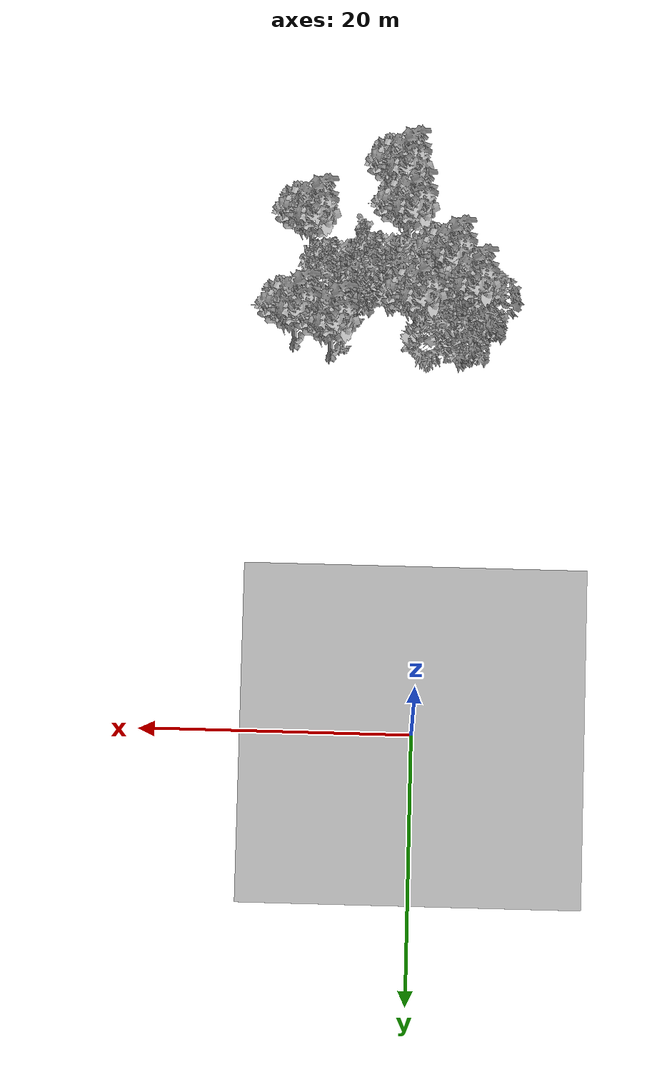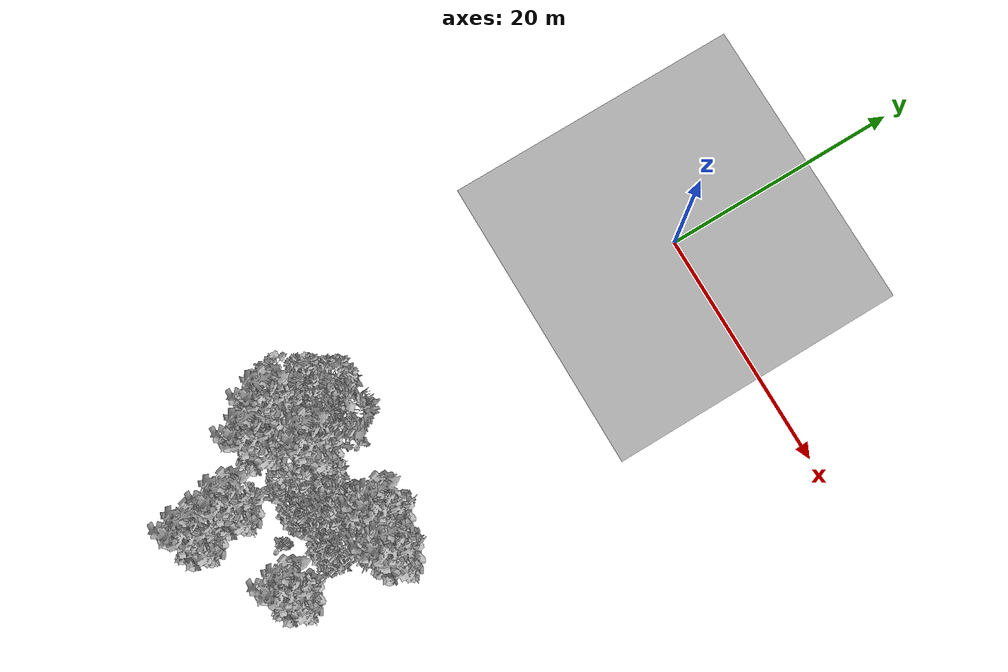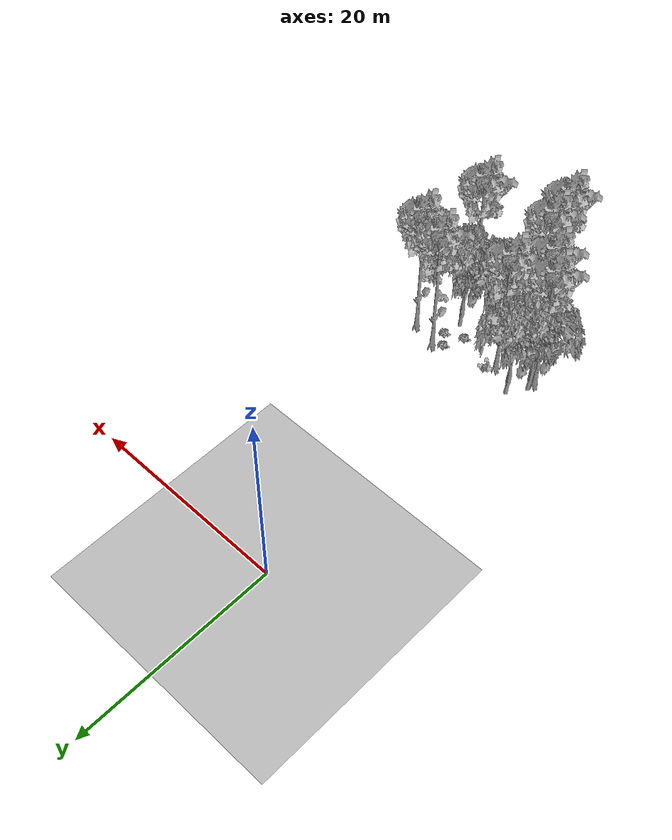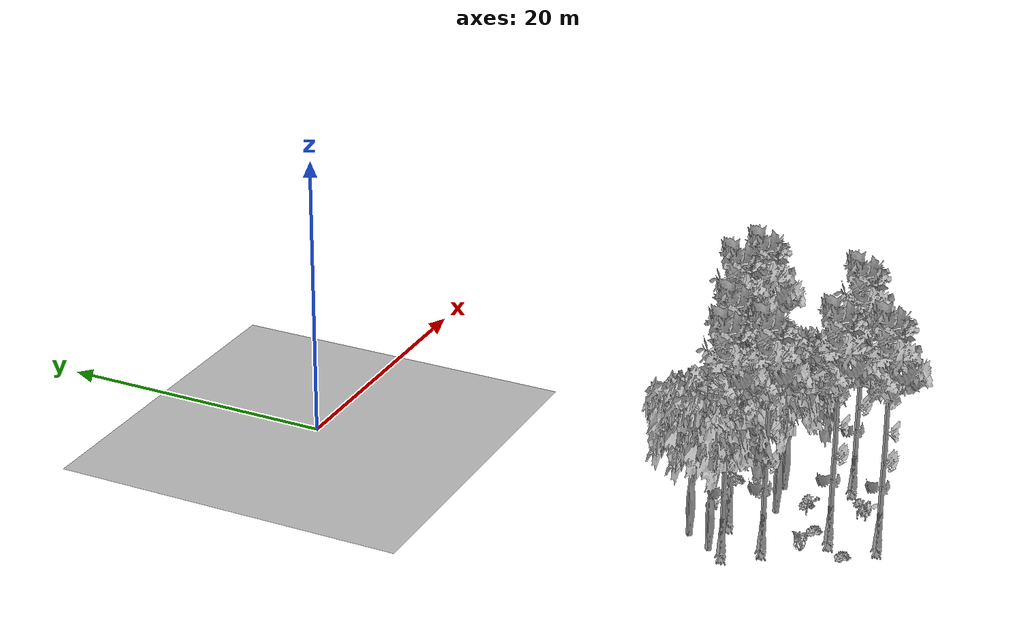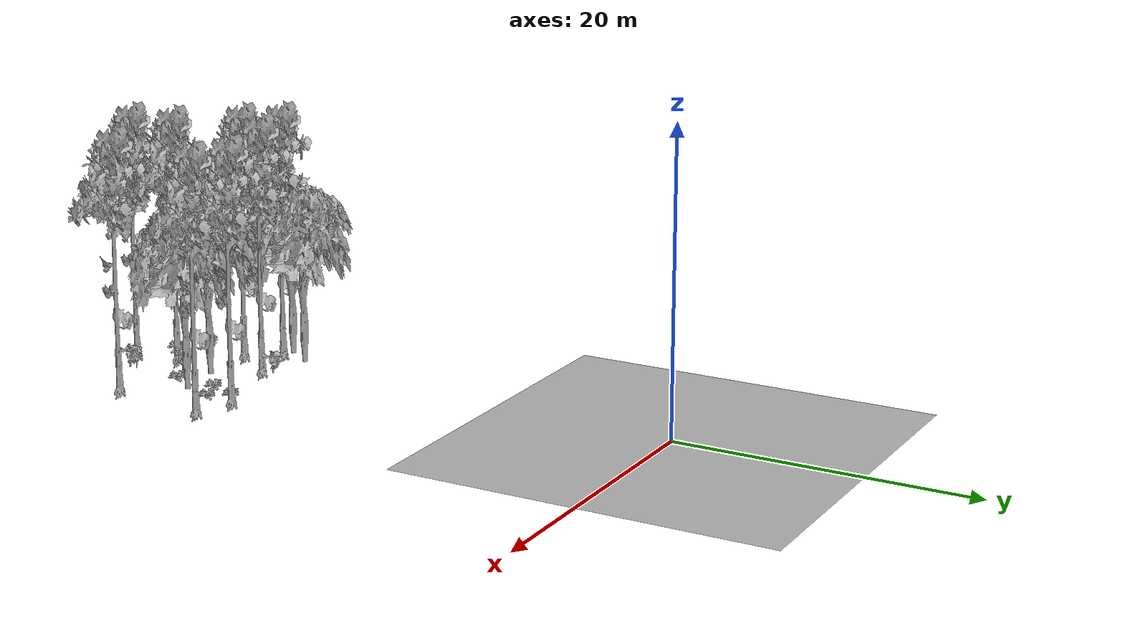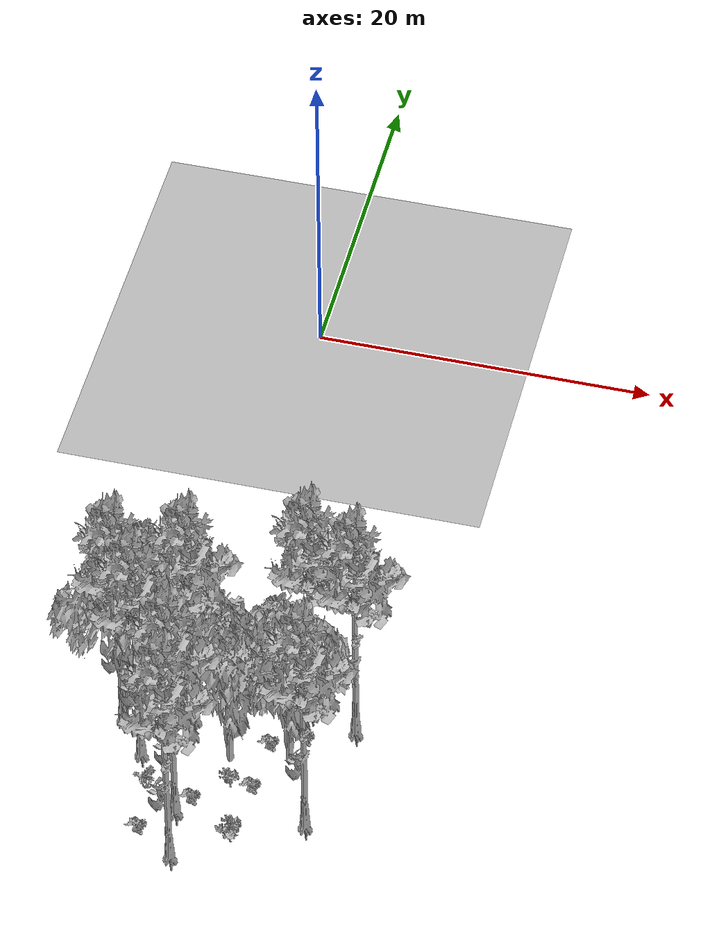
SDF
<sdf version="1.7">
 <world name="default">
  <model name="ground_plane">
   <static>1</static>
   <link name="link">
    <collision name="collision">
     <pose>-50 0 0 0 -0 0</pose>
     <geometry><plane><normal>0 0 1</normal><size>80 80</size></plane></geometry>
     <surface><contact><ode><min_depth>0.01</min_depth><max_vel>0</max_vel></ode></contact></surface>
    </collision>
    <visual name="grass">
     <cast_shadows>0</cast_shadows>
     <geometry>
      <mesh>
       <scale>0.46714285714285714 0.46714285714285714 0.1</scale>
       <uri>file://grass_plane/meshes/grass_plane.dae</uri>
      </mesh>
     </geometry>
    </visual>
   </link>
  </model>
  <model name="Tree 12">
   <static>1</static>
   <pose>6.2903916896166905 -32.05651221572814 0 1.57079 -0 0</pose>
   <link name="link">
    <collision name="collision">
     <geometry><mesh><scale>3.5 5 3.5</scale><uri>model://tree_2/meshes/tree_2.obj</uri></mesh></geometry>
    </collision>
    <visual name="visual">
     <geometry><mesh><scale>3.5 5 3.5</scale><uri>model://tree_2/meshes/tree_2.obj</uri></mesh></geometry>
    </visual>
   </link>
  </model>
  <model name="Tree 99">
   <static>1</static>
   <pose>-3.352792092564165 -31.219099080847037 0 1.57079 -0 0</pose>
   <link name="link">
    <collision name="collision">
     <geometry><mesh><scale>3.5 5 3.5</scale><uri>model://tree_9/meshes/tree_9.obj</uri></mesh></geometry>
    </collision>
    <visual name="visual">
     <geometry><mesh><scale>3.5 5 3.5</scale><uri>model://tree_9/meshes/tree_9.obj</uri></mesh></geometry>
    </visual>
   </link>
  </model>
  <model name="Tree 122">
   <static>1</static>
   <pose>-2.2000101202410463 -28.582600271685827 0 1.57079 -0 0</pose>
   <link name="link">
    <collision name="collision">
     <geometry><mesh><scale>3.5 5 3.5</scale><uri>model://tree_2/meshes/tree_2.obj</uri></mesh></geometry>
    </collision>
    <visual name="visual">
     <geometry><mesh><scale>3.5 5 3.5</scale><uri>model://tree_2/meshes/tree_2.obj</uri></mesh></geometry>
    </visual>
   </link>
  </model>
  <model name="Tree 152">
   <static>1</static>
   <pose>3.044941016356603 -32.61312517405763 0 1.57079 -0 0</pose>
   <link name="link">
    <collision name="collision">
     <geometry><mesh><scale>3.5 5 3.5</scale><uri>model://tree_2/meshes/tree_2.obj</uri></mesh></geometry>
    </collision>
    <visual name="visual">
     <geometry><mesh><scale>3.5 5 3.5</scale><uri>model://tree_2/meshes/tree_2.obj</uri></mesh></geometry>
    </visual>
   </link>
  </model>
  <model name="Tree 184">
   <static>1</static>
   <pose>6.687682010510926 -28.27421779204304 0 1.57079 -0 0</pose>
   <link name="link">
    <collision name="collision">
     <geometry><mesh><scale>3.5 5 3.5</scale><uri>model://tree_9/meshes/tree_9.obj</uri></mesh></geometry>
    </collision>
    <visual name="visual">
     <geometry><mesh><scale>3.5 5 3.5</scale><uri>model://tree_9/meshes/tree_9.obj</uri></mesh></geometry>
    </visual>
   </link>
  </model>
  <model name="Tree 277">
   <static>1</static>
   <pose>-1.7265009322104419 -33.33722696188951 0 1.57079 -0 0</pose>
   <link name="link">
    <collision name="collision">
     <geometry><mesh><scale>3.5 5 3.5</scale><uri>model://tree_9/meshes/tree_9.obj</uri></mesh></geometry>
    </collision>
    <visual name="visual">
     <geometry><mesh><scale>3.5 5 3.5</scale><uri>model://tree_9/meshes/tree_9.obj</uri></mesh></geometry>
    </visual>
   </link>
  </model>
  <model name="Tree 313">
   <static>1</static>
   <pose>9.380922716769277 -29.09559537396726 0 1.57079 -0 0</pose>
   <link name="link">
    <collision name="collision">
     <geometry><mesh><scale>3.5 5 3.5</scale><uri>model://tree_9/meshes/tree_9.obj</uri></mesh></geometry>
    </collision>
    <visual name="visual">
     <geometry><mesh><scale>3.5 5 3.5</scale><uri>model://tree_9/meshes/tree_9.obj</uri></mesh></geometry>
    </visual>
   </link>
  </model>
  <model name="Tree 423">
   <static>1</static>
   <pose>1.708530214823405 -39.91739719180537 0 1.57079 -0 0</pose>
   <link name="link">
    <collision name="collision">
     <geometry><mesh><scale>3.5 5 3.5</scale><uri>model://tree_9/meshes/tree_9.obj</uri></mesh></geometry>
    </collision>
    <visual name="visual">
     <geometry><mesh><scale>3.5 5 3.5</scale><uri>model://tree_9/meshes/tree_9.obj</uri></mesh></geometry>
    </visual>
   </link>
  </model>
  <model name="Tree 456">
   <static>1</static>
   <pose>0.4823281201297718 -30.28392977932932 0 1.57079 -0 0</pose>
   <link name="link">
    <collision name="collision">
     <geometry><mesh><scale>3.5 5 3.5</scale><uri>model://tree_9/meshes/tree_9.obj</uri></mesh></geometry>
    </collision>
    <visual name="visual">
     <geometry><mesh><scale>3.5 5 3.5</scale><uri>model://tree_9/meshes/tree_9.obj</uri></mesh></geometry>
    </visual>
   </link>
  </model>
  <model name="Tree 514">
   <static>1</static>
   <pose>-3.3874318848971114 -30.353611275766575 0 1.57079 -0 0</pose>
   <link name="link">
    <collision name="collision">
     <geometry><mesh><scale>3.5 5 3.5</scale><uri>model://tree_2/meshes/tree_2.obj</uri></mesh></geometry>
    </collision>
    <visual name="visual">
     <geometry><mesh><scale>3.5 5 3.5</scale><uri>model://tree_2/meshes/tree_2.obj</uri></mesh></geometry>
    </visual>
   </link>
  </model>
  <model name="Tree 582">
   <static>1</static>
   <pose>1.184588315287023 -36.84550355281083 0 1.57079 -0 0</pose>
   <link name="link">
    <collision name="collision">
     <geometry><mesh><scale>3.5 5 3.5</scale><uri>model://tree_9/meshes/tree_9.obj</uri></mesh></geometry>
    </collision>
    <visual name="visual">
     <geometry><mesh><scale>3.5 5 3.5</scale><uri>model://tree_9/meshes/tree_9.obj</uri></mesh></geometry>
    </visual>
   </link>
  </model>
  <model name="Tree 595">
   <static>1</static>
   <pose>8.28675273107826 -36.15305519178234 0 1.57079 -0 0</pose>
   <link name="link">
    <collision name="collision">
     <geometry><mesh><scale>3.5 5 3.5</scale><uri>model://tree_9/meshes/tree_9.obj</uri></mesh></geometry>
    </collision>
    <visual name="visual">
     <geometry><mesh><scale>3.5 5 3.5</scale><uri>model://tree_9/meshes/tree_9.obj</uri></mesh></geometry>
    </visual>
   </link>
  </model>
  <model name="Bush 23">
   <static>1</static>
   <pose>5.825748309753244 -28.955322908491414 0 1.57079 -0 0</pose>
   <link name="link">
    <collision name="collision">
     <geometry><mesh><scale>2 2 2</scale><uri>model://bush_2/meshes/bush_2.obj</uri></mesh></geometry>
     <surface><contact><collide_without_contact>false</collide_without_contact></contact></surface>
    </collision>
    <visual name="visual">
     <geometry><mesh><scale>2 2 2</scale><uri>model://bush_2/meshes/bush_2.obj</uri></mesh></geometry>
    </visual>
   </link>
  </model>
  <model name="Bush 31">
   <static>1</static>
   <pose>1.702749446875636 -35.72423637655138 0 1.57079 -0 0</pose>
   <link name="link">
    <collision name="collision">
     <geometry><mesh><scale>2 2 2</scale><uri>model://bush_2/meshes/bush_2.obj</uri></mesh></geometry>
     <surface><contact><collide_without_contact>false</collide_without_contact></contact></surface>
    </collision>
    <visual name="visual">
     <geometry><mesh><scale>2 2 2</scale><uri>model://bush_2/meshes/bush_2.obj</uri></mesh></geometry>
    </visual>
   </link>
  </model>
  <model name="Bush 66">
   <static>1</static>
   <pose>0.9789012485649025 -29.023658504248495 0 1.57079 -0 0</pose>
   <link name="link">
    <collision name="collision">
     <geometry><mesh><scale>2 2 2</scale><uri>model://bush_0/meshes/bush_0.obj</uri></mesh></geometry>
     <surface><contact><collide_without_contact>false</collide_without_contact></contact></surface>
    </collision>
    <visual name="visual">
     <geometry><mesh><scale>2 2 2</scale><uri>model://bush_0/meshes/bush_0.obj</uri></mesh></geometry>
    </visual>
   </link>
  </model>
  <model name="Bush 144">
   <static>1</static>
   <pose>3.668456831215515 -34.51397957603114 0 1.57079 -0 0</pose>
   <link name="link">
    <collision name="collision">
     <geometry><mesh><scale>2 2 2</scale><uri>model://bush_5/meshes/bush_5.obj</uri></mesh></geometry>
     <surface><contact><collide_without_contact>false</collide_without_contact></contact></surface>
    </collision>
    <visual name="visual">
     <geometry><mesh><scale>2 2 2</scale><uri>model://bush_5/meshes/bush_5.obj</uri></mesh></geometry>
    </visual>
   </link>
  </model>
  <model name="Bush 189">
   <static>1</static>
   <pose>-0.607970828373702 -38.36289296481133 0 1.57079 -0 0</pose>
   <link name="link">
    <collision name="collision">
     <geometry><mesh><scale>2 2 2</scale><uri>model://bush_2/meshes/bush_2.obj</uri></mesh></geometry>
     <surface><contact><collide_without_contact>false</collide_without_contact></contact></surface>
    </collision>
    <visual name="visual">
     <geometry><mesh><scale>2 2 2</scale><uri>model://bush_2/meshes/bush_2.obj</uri></mesh></geometry>
    </visual>
   </link>
  </model>
  <model name="Bush 299">
   <static>1</static>
   <pose>4.709627093755998 -34.199534941159044 0 1.57079 -0 0</pose>
   <link name="link">
    <collision name="collision">
     <geometry><mesh><scale>2 2 2</scale><uri>model://bush_2/meshes/bush_2.obj</uri></mesh></geometry>
     <surface><contact><collide_without_contact>false</collide_without_contact></contact></surface>
    </collision>
    <visual name="visual">
     <geometry><mesh><scale>2 2 2</scale><uri>model://bush_2/meshes/bush_2.obj</uri></mesh></geometry>
    </visual>
   </link>
  </model>
  <model name="Bush 310">
   <static>1</static>
   <pose>4.927098174156157 -31.02876303524659 0 1.57079 -0 0</pose>
   <link name="link">
    <collision name="collision">
     <geometry><mesh><scale>2 2 2</scale><uri>model://bush_2/meshes/bush_2.obj</uri></mesh></geometry>
     <surface><contact><collide_without_contact>false</collide_without_contact></contact></surface>
    </collision>
    <visual name="visual">
     <geometry><mesh><scale>2 2 2</scale><uri>model://bush_2/meshes/bush_2.obj</uri></mesh></geometry>
    </visual>
   </link>
  </model>
  <model name="Bush 311">
   <static>1</static>
   <pose>-0.7881838554117451 -35.59905804079079 0 1.57079 -0 0</pose>
   <link name="link">
    <collision name="collision">
     <geometry><mesh><scale>2 2 2</scale><uri>model://bush_4/meshes/bush_4.obj</uri></mesh></geometry>
     <surface><contact><collide_without_contact>false</collide_without_contact></contact></surface>
    </collision>
    <visual name="visual">
     <geometry><mesh><scale>2 2 2</scale><uri>model://bush_4/meshes/bush_4.obj</uri></mesh></geometry>
    </visual>
   </link>
  </model>
  <model name="Bush 370">
   <static>1</static>
   <pose>4.630542258569108 -38.19071376747764 0 1.57079 -0 0</pose>
   <link name="link">
    <collision name="collision">
     <geometry><mesh><scale>2 2 2</scale><uri>model://bush_0/meshes/bush_0.obj</uri></mesh></geometry>
     <surface><contact><collide_without_contact>false</collide_without_contact></contact></surface>
    </collision>
    <visual name="visual">
     <geometry><mesh><scale>2 2 2</scale><uri>model://bush_0/meshes/bush_0.obj</uri></mesh></geometry>
    </visual>
   </link>
  </model>
  <model name="Bush 412">
   <static>1</static>
   <pose>4.6313270253585515 -37.66075758843488 0 1.57079 -0 0</pose>
   <link name="link">
    <collision name="collision">
     <geometry><mesh><scale>2 2 2</scale><uri>model://bush_5/meshes/bush_5.obj</uri></mesh></geometry>
     <surface><contact><collide_without_contact>false</collide_without_contact></contact></surface>
    </collision>
    <visual name="visual">
     <geometry><mesh><scale>2 2 2</scale><uri>model://bush_5/meshes/bush_5.obj</uri></mesh></geometry>
    </visual>
   </link>
  </model>
  <model name="Bush 602">
   <static>1</static>
   <pose>6.7405267132196585 -30.211593998232615 0 1.57079 -0 0</pose>
   <link name="link">
    <collision name="collision">
     <geometry><mesh><scale>2 2 2</scale><uri>model://bush_2/meshes/bush_2.obj</uri></mesh></geometry>
     <surface><contact><collide_without_contact>false</collide_without_contact></contact></surface>
    </collision>
    <visual name="visual">
     <geometry><mesh><scale>2 2 2</scale><uri>model://bush_2/meshes/bush_2.obj</uri></mesh></geometry>
    </visual>
   </link>
  </model>
 </world>
</sdf>
